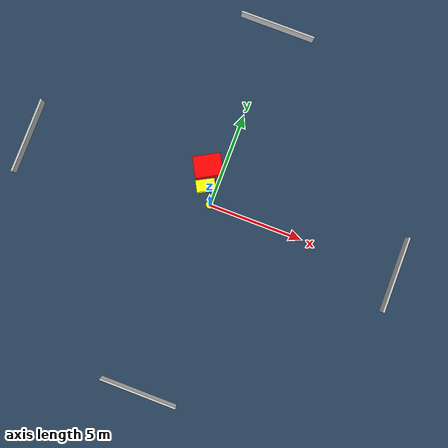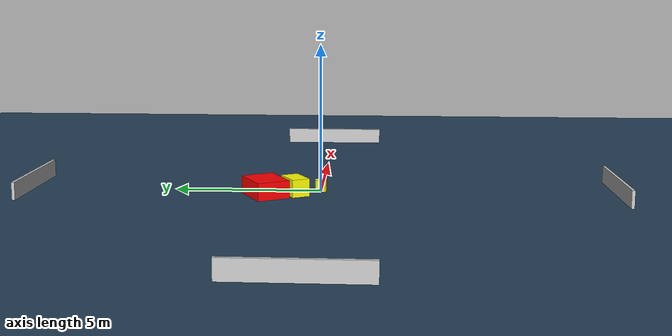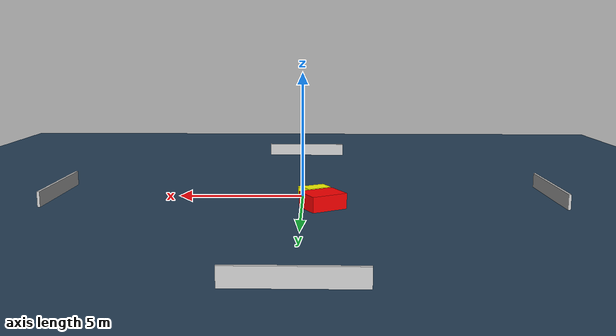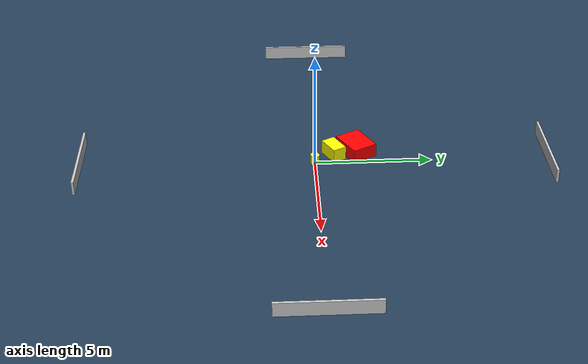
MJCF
<?xml version="1.0" ?>
<mujoco model="generated_environment">
  <option timestep="0.01" integrator="RK4" cone="elliptic"/>
  <default>
    <geom density="1"/>
  </default>
  <asset>
    <texture builtin="gradient" height="3072" name="skybox" rgb1="0.3 0.5 0.7" rgb2="0 0 0" type="skybox" width="512"/>
    <texture builtin="checker" height="300" name="groundplane" rgb1="0.2 0.3 0.4" rgb2="0.1 0.2 0.3" type="2d" width="300"/>
    <material name="groundplane" reflectance="0.2" texrepeat="5 5" texture="groundplane"/>
  </asset>
  <worldbody>
    <light dir="0 0 -1" directional="true" pos="0 0 1.5"/>
    <geom condim="3" friction="0.5 0.005 0.001" material="groundplane" name="floor" pos="0 0 0" size="0 0 0.05" type="plane"/>
    <body name="walls">
      <geom name="wall_1" condim="4" pos="-10.0 0.0 0.3" rgba="0.800000011920929 0.800000011920929 0.800000011920929 1.0" size="0.05 2.0 0.3" type="box"/>
      <geom name="wall_2" condim="4" pos="10.0 0.0 0.3" rgba="0.800000011920929 0.800000011920929 0.800000011920929 1.0" size="0.05 2.0 0.3" type="box"/>
      <geom name="wall_3" condim="4" pos="0.0 -10.0 0.3" rgba="0.800000011920929 0.800000011920929 0.800000011920929 1.0" size="2.0 0.05 0.3" type="box"/>
      <geom name="wall_4" condim="4" pos="0.0 10.0 0.3" rgba="0.800000011920929 0.800000011920929 0.800000011920929 1.0" size="2.0 0.05 0.3" type="box"/>
    </body>
    <body name="robot">
      <joint name="joint_x" type="slide" pos="0 0 0" axis="1 0 0"/>
      <joint name="joint_y" type="slide" pos="0 0 0" axis="0 1 0"/>
      <geom name="robot" type="cylinder" pos="0.0 0.0 0.2" size="0.2 0.2 0.0" mass="5.0" friction="1.0 0.005 0.0001" condim="4" rgba="1.0 1.0 0.0 1.0"/>
    </body>
    <body name="obstacle_1_movable">
      <geom name="obstacle_1_movable" condim="4" pos="-0.5405296745188978 0.8344334065276084 0.3" euler="0 0 118.68133986694396" friction="0.0 0.005 0.001" rgba="1.0 1.0 0.0 1.0" size="0.30517251121862254 0.4879081086678267 0.3" type="box" mass="0.1"/>
      <joint type="free"/>
    </body>
    <body name="obstacle_2_static">
      <geom name="obstacle_2_static" condim="4" pos="-0.7949448857522994 1.8148246426017693 0.3" euler="0 0 209.14908590438787" friction="0.0 0.005 0.001" rgba="1.0 0.0 0.0 1.0" size="0.7249811133730337 0.5613984209213416 0.3" type="box"/>
    </body>
  </worldbody>
  <actuator>
    <motor name="actuator_x" joint="joint_x" gear="1" ctrlrange="-1 1"/>
    <motor name="actuator_y" joint="joint_y" gear="1" ctrlrange="-1 1"/>
  </actuator>
</mujoco>
